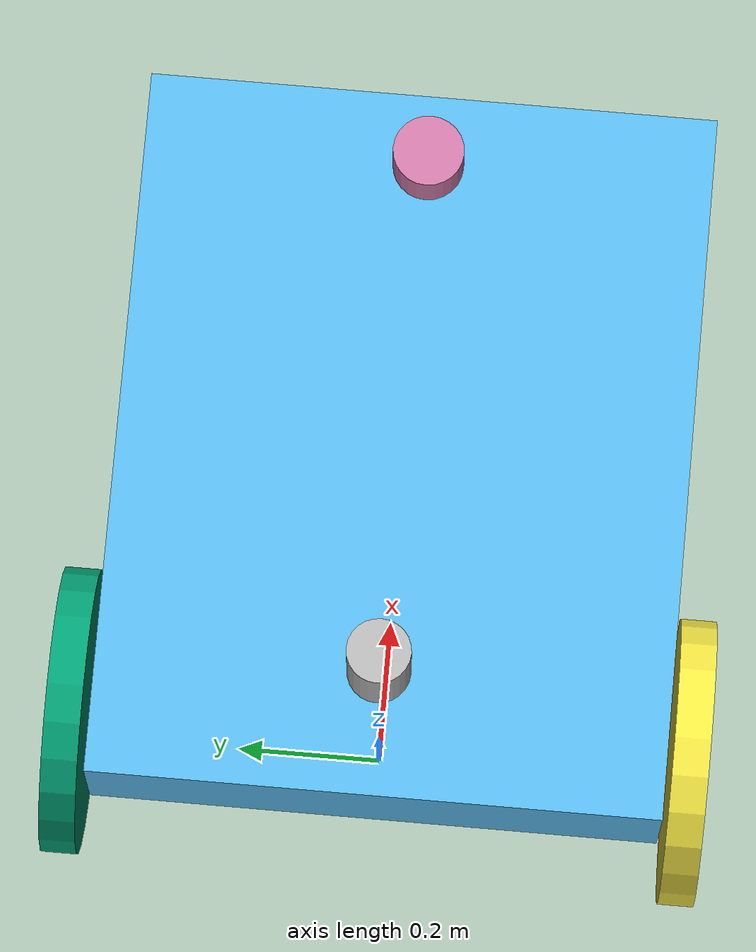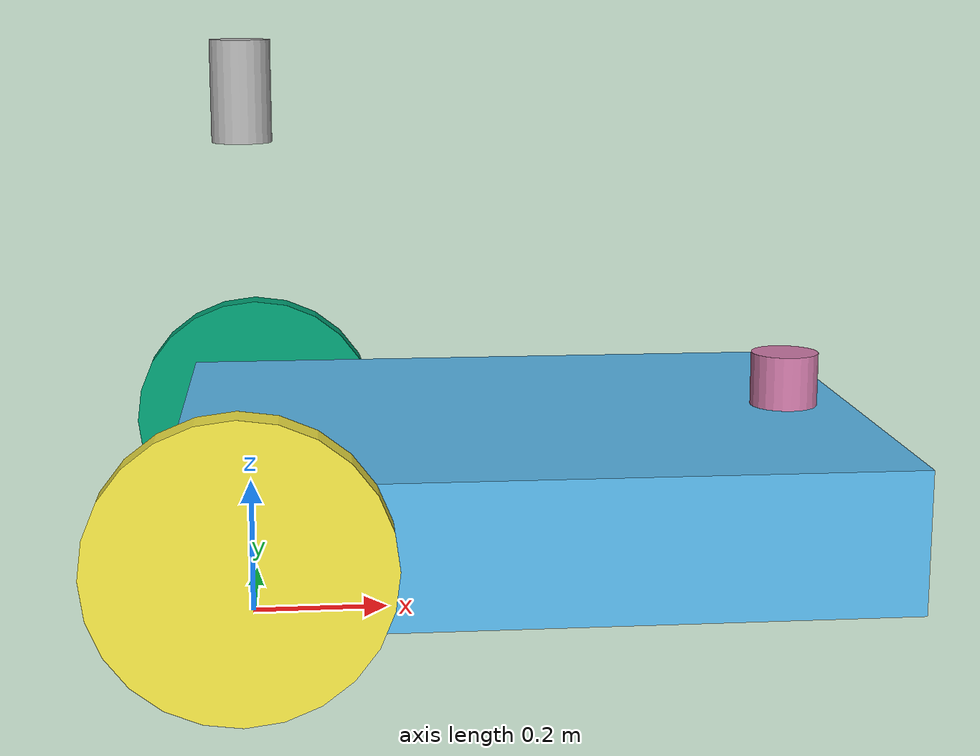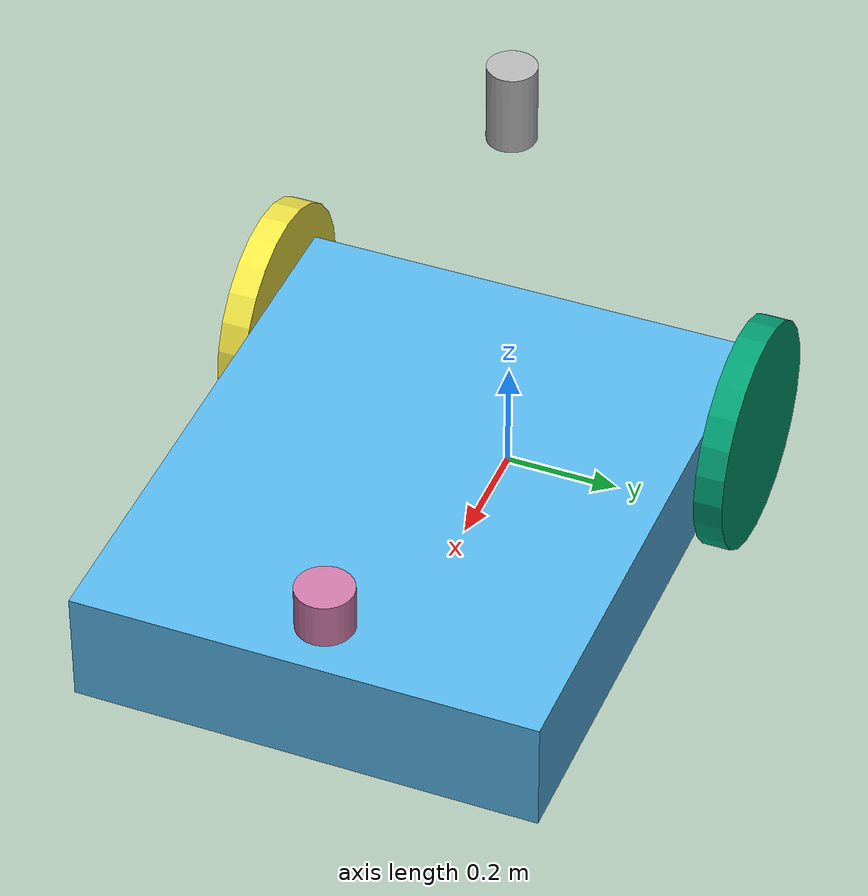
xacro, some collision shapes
<?xml version="1.0"?>
<robot name="robot_test1" xmlns:xacro="http://ros.org/wiki/xacro">

  <xacro:include filename="$(find robot_test1_description)/urdf/common.xacro"/>
  <xacro:include filename="$(find robot_test1_description)/urdf/base/base.urdf.xacro"/>
  <xacro:include filename="$(find robot_test1_description)/urdf/wheel/wheel.urdf.xacro"/>
  <xacro:include filename="$(find robot_test1_description)/urdf/wheel/idler_wheel.urdf.xacro"/>
  <xacro:include filename="$(find robot_test1_description)/urdf/sensors/lidar_2d/lidar_2d.urdf.xacro"/>
  <xacro:include filename="$(find velodyne_description)/urdf/HDL-32E.urdf.xacro"/>

  <link name="base_footprint"/>

  <xacro:base parent="base_footprint" x="1.0" y="0.8" z="0.2" density="1000">
    <origin xyz="0 0 0.2" rpy="0 0 0"/>
  </xacro:base>

  <xacro:wheel prefix="left" parent="base_link" radius="0.2" length="0.05" density="2700">
    <origin xyz="0 0.43 0" rpy="${-M_PI/2} 0 0"/>
    <axis xyz="0 0 1"/>
  </xacro:wheel>

  <xacro:wheel prefix="right" parent="base_link" radius="0.2" length="0.05" density="2700">
    <origin xyz="0 -0.43 0" rpy="${-M_PI/2} 0 0"/>
    <axis xyz="0 0 1"/>
  </xacro:wheel>

  <xacro:idler_wheel prefix="front" parent="base_link" radius="0.04" x_offset="0.04" z_offset="0.06" density="270000">
    <origin xyz="0.8 0 -0.1"/>
  </xacro:idler_wheel>

  <xacro:lidar_2d prefix="front" parent="base_link">
    <origin xyz="0.8 0 ${0.1 + 0.06}"/>
  </xacro:lidar_2d>

  <!-- Transmissions -->
  <xacro:wheel_transmission prefix="left"/>
  <xacro:wheel_transmission prefix="right"/>

  <!-- Gazebo config -->
  <gazebo>
    <plugin name="gazebo_ros_control" filename="libgazebo_ros_control.so">
    </plugin>
  </gazebo>

  <xacro:base_gazebo/>
  <xacro:wheel_gazebo prefix="left"/>
  <xacro:wheel_gazebo prefix="right"/>
  <xacro:idler_wheel_gazebo prefix="front"/>
  <xacro:lidar_2d_gazebo
      prefix="front"
      angle_min="${-radians(275.0 / 2)}"
      angle_max="${radians(275.0 / 2)}"
      angle_increment="${radians(0.17)}"
      range_min="0.0"
      range_max="30.0"
      rate="${1.0/0.03}"
      noise_sigma="0.01" />

  <xacro:HDL-32E gpu="true">
    <origin xyz="0 0 0.5" rpy="0 0 0"/>
  </xacro:HDL-32E>

</robot>

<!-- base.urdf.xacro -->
<robot xmlns:xacro="http://ros.org/wiki/xacro">

  <xacro:include filename="$(find robot_test1_description)/urdf/base/base.gazebo.xacro"/>

  <xacro:macro name="base" params="parent x y z density *origin">

    <xacro:property name="mass" value="${x*y*z*density}"/>
    <xacro:property name="offset" value="${x*0.4}"/>

    <joint name="base_link_joint" type="fixed">
      <xacro:insert_block name="origin"/>
      <parent link="${parent}"/>
      <child link="base_link"/>
    </joint>

    <link name="base_link">

      <visual>
        <geometry>
          <box size="${x} ${y} ${z}"/>
        </geometry>
        <origin xyz="${offset} 0 0" rpy="0 0 0"/>
      </visual>

      <collision>
        <geometry>
          <box size="${x} ${y} ${z}"/>
        </geometry>
        <origin xyz="${offset} 0 0" rpy="0 0 0"/>
      </collision>

      <inertial>
        <origin xyz="${offset} 0 0" rpy="0 0 0"/>
        <mass value="${mass}"/>
        <inertia
            ixx="${mass*(y*y+z*z)/12}" ixy="0" ixz="0"
            iyy="${mass*(x*x+z*z)/12+mass*offset*offset}" iyz="0"
            izz="${mass*(x*x+y*y)/12+mass*offset*offset}"/>
      </inertial>

    </link>

  </xacro:macro>

</robot>

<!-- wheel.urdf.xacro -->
<robot xmlns:xacro="http://ros.org/wiki/xacro">

  <xacro:include filename="$(find robot_test1_description)/urdf/common.xacro"/>
  <xacro:include filename="$(find robot_test1_description)/urdf/wheel/wheel.transmission.xacro"/>
  <xacro:include filename="$(find robot_test1_description)/urdf/wheel/wheel.gazebo.xacro"/>

  <xacro:macro name="wheel" params="prefix parent radius length density *origin *axis">

    <xacro:property name="mass" value="${M_PI*radius*radius*length*density}"/>

    <joint name="${prefix}_wheel_joint" type="continuous">
      <xacro:insert_block name="origin"/>
      <xacro:insert_block name="axis"/>
      <parent link="${parent}"/>
      <child link="${prefix}_wheel"/>
    </joint>

    <link name="${prefix}_wheel">
      <visual>
        <geometry>
          <cylinder radius="${radius}" length="${length}"/>
        </geometry>
        <origin xyz="0 0 0" rpy="0 0 0"/>
      </visual>

      <collision>
        <geometry>
          <cylinder radius="${radius}" length="${length}"/>
        </geometry>
        <origin xyz="0 0 0" rpy="0 0 0"/>
      </collision>

      <inertial>
        <origin xyz="0 0 0" rpy="0 0 0"/>
        <mass value="${mass}"/>
        <inertia
            ixx="${mass*radius*radius/4+mass*length*length/12}" ixy="0" ixz="0"
            iyy="${mass*radius*radius/4+mass*length*length/12}" iyz="0" izz="${mass*radius*radius/2}"/>
      </inertial>

    </link>
  </xacro:macro>

</robot>

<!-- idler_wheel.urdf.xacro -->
<robot xmlns:xacro="http://ros.org/wiki/xacro">

  <xacro:include filename="$(find robot_test1_description)/urdf/wheel/idler_wheel.gazebo.xacro"/>
  <xacro:include filename="$(find robot_test1_description)/urdf/wheel/wheel.urdf.xacro"/>
  <xacro:include filename="$(find robot_test1_description)/urdf/common.xacro"/>

  <xacro:macro name="idler_wheel" params="prefix parent radius x_offset z_offset density *origin">

    <xacro:property name="mass" value="${M_PI*x_offset*x_offset*z_offset*density}"/>

    <joint name="${prefix}_idler_wheel_base_joint" type="continuous">
      <xacro:insert_block name="origin"/>
      <axis xyz="0 0 1"/>
      <parent link="${parent}"/>
      <child link="${prefix}_idler_wheel_base"/>
    </joint>

    <link name="${prefix}_idler_wheel_base">

      <visual>
        <geometry>
          <cylinder radius="${x_offset}" length="${z_offset}"/>
        </geometry>
        <origin xyz="0 0 -${z_offset/2}" rpy="0 0 0"/>
      </visual>

      <collision>
        <geometry>
          <cylinder radius="${x_offset}" length="${z_offset}"/>
        </geometry>
        <origin xyz="0 0 -${z_offset/2}" rpy="0 0 0"/>
      </collision>

      <inertial>
        <origin xyz="0 0 -${z_offset/2}" rpy="0 0 0"/>
        <mass value="${mass}"/>
        <inertia
            ixx="${mass*x_offset*x_offset/4+mass*z_offset*z_offset/12+mass*z_offset*z_offset/4}" ixy="0" ixz="0"
            iyy="${mass*x_offset*x_offset/4+mass*z_offset*z_offset/12+mass*z_offset*z_offset/4}" iyz="0"
            izz="${mass*x_offset*x_offset/2}"/>
      </inertial>

    </link>

    <xacro:wheel prefix="${prefix}_idler" parent="${prefix}_idler_wheel_base"
                 radius="${radius}" length="${radius/2}" density="${density}">
      <origin xyz="-${x_offset} 0 -${z_offset}" rpy="-${M_PI/2} 0 0"/>
      <axis xyz="0 0 1"/>
    </xacro:wheel>

  </xacro:macro>

</robot>

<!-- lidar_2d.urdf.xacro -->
<robot xmlns:xacro="http://ros.org/wiki/xacro">

  <xacro:include filename="$(find robot_test1_description)/urdf/sensors/lidar_2d/lidar_2d.gazebo.xacro"/>

  <xacro:macro name="lidar_2d" params="prefix parent *origin">

    <xacro:property name="mass" value="0.67"/>
    <xacro:property name="radius" value="0.05"/>
    <xacro:property name="length" value="0.08"/>

    <joint name="${prefix}_lidar_2d_joint" type="fixed">
      <xacro:insert_block name="origin"/>
      <parent link="${parent}"/>
      <child link="${prefix}_lidar_2d_link"/>
    </joint>

    <link name="${prefix}_lidar_2d_link">
      <visual>
        <geometry>
          <cylinder radius="${radius}" length="${length}"/>
        </geometry>
        <origin xyz="0 0 -0.02" rpy="0 0 0"/>
      </visual>

      <inertial>
        <origin xyz="0 0 0" rpy="0 0 0"/>
        <mass value="${mass}"/>
        <inertia
            ixx="${mass*radius*radius/4 + mass*length*length/12}" ixy="0" ixz="0"
            iyy="${mass*radius*radius/4 + mass*length*length/12}" iyz="0"
            izz="${mass*radius*radius/2}"/>
      </inertial>

    </link>
  </xacro:macro>

</robot>

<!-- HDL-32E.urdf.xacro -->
<robot xmlns:xacro="http://www.ros.org/wiki/xacro" name="HDL-32E">
  <xacro:property name="M_PI" value="3.1415926535897931" />
  <xacro:macro name="HDL-32E" params="*origin parent:=base_link name:=velodyne tf_prefix:='' topic:=/velodyne_points organize_cloud:=false hz:=10 lasers:=32 samples:=2187 collision_range:=0.3 min_range:=0.9 max_range:=130.0 noise:=0.008 min_angle:=-${M_PI} max_angle:=${M_PI} gpu:=false">

    <joint name="${name}_base_mount_joint" type="fixed">
      <xacro:insert_block name="origin" />
      <parent link="${parent}"/>
      <child link="${name}_base_link"/>
    </joint>

    <link name="${name}_base_link">
      <inertial>
        <mass value="1.0"/>
        <origin xyz="0 0 0.07212"/>
        <inertia ixx="${(1.0 * (3.0*0.04267*0.04267 + 0.14424*0.14424)) / 12.0}" ixy="0" ixz="0"
          iyy="${(1.0 * (3.0*0.04267*0.04267 + 0.14424*0.14424)) / 12.0}" iyz="0"
          izz="${0.5 * 1.0 * (0.04267*0.04267)}"/>
      </inertial>
      <visual>
        <geometry>
          <mesh filename="package://velodyne_description/meshes/HDL32E_base.dae" />
        </geometry>
      </visual>
      <collision>
        <origin rpy="0 0 0" xyz="0 0 0.07212"/>
        <geometry>
          <cylinder radius="0.04267" length="0.14424"/>
        </geometry>
      </collision>
    </link>

    <joint name="${name}_base_scan_joint" type="fixed" >
      <origin xyz="0 0 0.09081" rpy="0 0 0" />
      <parent link="${name}_base_link" />
      <child link="${name}"/>
    </joint>

    <link name="${name}">
      <inertial>
        <mass value="0.01"/>
        <origin xyz="0 0 0"/>
        <inertia ixx="1e-7" ixy="0" ixz="0" iyy="1e-7" iyz="0" izz="1e-7"/>
      </inertial>
      <visual>
        <origin xyz="0 0 -0.09081" rpy="0 0 0" />
        <geometry>
          <mesh filename="package://velodyne_description/meshes/HDL32E_scan.dae" />
        </geometry>
      </visual>
      <collision>
        <geometry>
          <sphere radius="0"/>
        </geometry>
      </collision>
    </link>

    <!-- Gazebo requires the velodyne_gazebo_plugins package -->
    <gazebo reference="${name}">
      <xacro:if value="${gpu}">
        <sensor type="gpu_ray" name="${name}-HDL32E">
          <pose>0 0 0 0 0 0</pose>
          <visualize>false</visualize>
          <update_rate>${hz}</update_rate>
          <ray>
            <scan>
              <horizontal>
                <samples>${samples}</samples>
                <resolution>1</resolution>
                <min_angle>${min_angle}</min_angle>
                <max_angle>${max_angle}</max_angle>
              </horizontal>
              <vertical>
                <samples>${lasers}</samples>
                <resolution>1</resolution>
                <min_angle>-${5.0*M_PI/180.0}</min_angle>
                <max_angle> ${85.0*M_PI/180.0}</max_angle>
              </vertical>
            </scan>
            <range>
              <min>${collision_range}</min>
              <max>${max_range+1}</max>
              <resolution>0.001</resolution>
            </range>
            <noise>
              <type>gaussian</type>
              <mean>0.0</mean>
              <stddev>0.0</stddev>
            </noise>
          </ray>
          <plugin name="gazebo_ros_laser_controller" filename="libgazebo_ros_velodyne_laser.so">
            <ros>
              <namespace>/${name}</namespace>
              <remapping>~/out:=${topic}</remapping>
            </ros>
            <tf_prefix>${tf_prefix}</tf_prefix>
            <frame_name>${name}</frame_name>
            <organize_cloud>${organize_cloud}</organize_cloud>
            <min_range>${min_range}</min_range>
            <max_range>${max_range}</max_range>
            <gaussian_noise>${noise}</gaussian_noise>
          </plugin>
        </sensor>
      </xacro:if>
      <xacro:unless value="${gpu}">
        <sensor type="ray" name="${name}-HDL32E">
          <pose>0 0 0 0 0 0</pose>
          <visualize>false</visualize>
          <update_rate>${hz}</update_rate>
          <ray>
            <scan>
              <horizontal>
                <samples>${samples}</samples>
                <resolution>1</resolution>
                <min_angle>${min_angle}</min_angle>
                <max_angle>${max_angle}</max_angle>
              </horizontal>
              <vertical>
                <samples>${lasers}</samples>
                <resolution>1</resolution>
                <min_angle>-${5.0*M_PI/180.0}</min_angle>
                <max_angle> ${85.0*M_PI/180.0}</max_angle>
              </vertical>
            </scan>
            <range>
              <min>${collision_range}</min>
              <max>${max_range+1}</max>
              <resolution>0.001</resolution>
            </range>
            <noise>
              <type>gaussian</type>
              <mean>0.0</mean>
              <stddev>0.0</stddev>
            </noise>
          </ray>
          <plugin name="gazebo_ros_laser_controller" filename="libgazebo_ros_velodyne_laser.so">
            <ros>
              <namespace>/${name}</namespace>
              <remapping>~/out:=${topic}</remapping>
            </ros>
            <tf_prefix>${tf_prefix}</tf_prefix>
            <frame_name>${name}</frame_name>
            <organize_cloud>${organize_cloud}</organize_cloud>
            <min_range>${min_range}</min_range>
            <max_range>${max_range}</max_range>
            <gaussian_noise>${noise}</gaussian_noise>
          </plugin>
        </sensor>
      </xacro:unless>
    </gazebo>

  </xacro:macro>
</robot>
